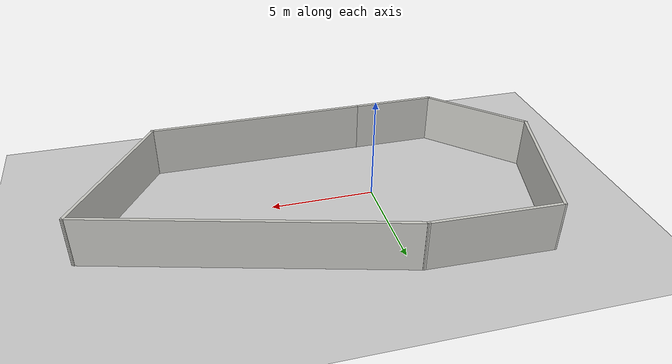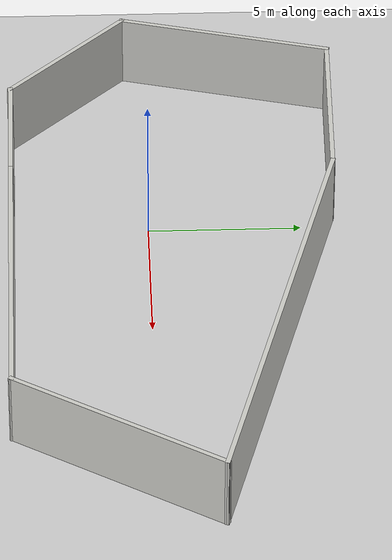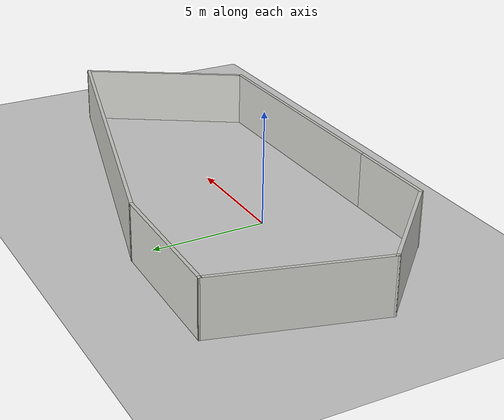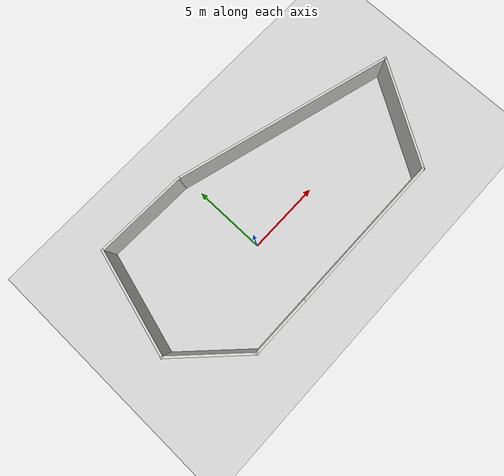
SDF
<sdf version="1.7">
 <world name="default">
  <light name="sun" type="directional">
   <pose>0 0 10 0 -0 0</pose>
   <diffuse>0.8 0.8 0.8 1</diffuse>
   <specular>0.2 0.2 0.2 1</specular>
   <attenuation>
    <range>1000</range>
    <constant>0.9</constant>
    <linear>0.01</linear>
    <quadratic>0.001</quadratic>
   </attenuation>
   <direction>-0.5 0.1 -0.9</direction>
   <spot><inner_angle>0</inner_angle><outer_angle>0</outer_angle><falloff>0</falloff></spot>
  </light>
  <model name="ground_plane">
   <static>1</static>
   <link name="link">
    <collision name="collision">
     <geometry><plane><normal>0 0 1</normal><size>100 100</size></plane></geometry>
     <surface>
      <contact><collide_bitmask>65535</collide_bitmask></contact>
      <friction><ode><mu>100</mu><mu2>50</mu2></ode></friction>
     </surface>
    </collision>
    <visual name="visual">
     <cast_shadows>0</cast_shadows>
     <geometry><plane><normal>0 0 1</normal><size>100 100</size></plane></geometry>
     <material>
      <script><uri>file://media/materials/scripts/gazebo.material</uri><name>Gazebo/Grey</name></script>
     </material>
    </visual>
   </link>
  </model>
  <gravity>0 0 -9.8</gravity>
  <magnetic_field>6e-06 2.3e-05 -4.2e-05</magnetic_field>
  <atmosphere type="adiabatic"/>
  <physics type="ode">
   <max_step_size>0.001</max_step_size>
   <real_time_factor>1</real_time_factor>
   <real_time_update_rate>1000</real_time_update_rate>
  </physics>
  <scene><ambient>0.4 0.4 0.4 1</ambient><background>0.7 0.7 0.7 1</background><shadows>1</shadows></scene>
  <spherical_coordinates>
   <surface_model>EARTH_WGS84</surface_model>
   <latitude_deg>0</latitude_deg>
   <longitude_deg>0</longitude_deg>
   <elevation>0</elevation>
   <heading_deg>0</heading_deg>
  </spherical_coordinates>
  <model name="build1">
   <pose>2.8806 0.863442 0 0 -0 0</pose>
   <link name="Wall_0">
    <collision name="Wall_0_Collision">
     <geometry><box><size>4.25 0.15 2.5</size></box></geometry>
     <pose>0 0 1.25 0 -0 0</pose>
    </collision>
    <visual name="Wall_0_Visual">
     <pose>0 0 1.25 0 -0 0</pose>
     <geometry><box><size>4.25 0.15 2.5</size></box></geometry>
     <material>
      <script><uri>file://media/materials/scripts/gazebo.material</uri><name>Gazebo/CeilingTiled</name></script>
      <ambient>1 1 1 1</ambient>
     </material>
     <meta><layer>0</layer></meta>
    </visual>
    <pose>-5.4106 -5.31344 0 0 -0 3.14159</pose>
   </link>
   <link name="Wall_1">
    <collision name="Wall_1_Collision">
     <geometry><box><size>5.5 0.15 2.5</size></box></geometry>
     <pose>0 0 1.25 0 -0 0</pose>
    </collision>
    <visual name="Wall_1_Visual">
     <pose>0 0 1.25 0 -0 0</pose>
     <geometry><box><size>5.5 0.15 2.5</size></box></geometry>
     <material>
      <script><uri>file://media/materials/scripts/gazebo.material</uri><name>Gazebo/CeilingTiled</name></script>
      <ambient>1 1 1 1</ambient>
     </material>
     <meta><layer>0</layer></meta>
    </visual>
    <pose>-9.35211 -3.42193 0 0 -0 2.35619</pose>
   </link>
   <link name="Wall_10">
    <collision name="Wall_10_Collision">
     <geometry><box><size>10.75 0.15 2.5</size></box></geometry>
     <pose>0 0 1.25 0 -0 0</pose>
    </collision>
    <visual name="Wall_10_Visual">
     <pose>0 0 1.25 0 -0 0</pose>
     <geometry><box><size>10.75 0.15 2.5</size></box></geometry>
     <material>
      <script><uri>file://media/materials/scripts/gazebo.material</uri><name>Gazebo/CeilingTiled</name></script>
      <ambient>1 1 1 1</ambient>
     </material>
     <meta><layer>0</layer></meta>
    </visual>
    <pose>1.9394 -5.31344 0 0 -0 0</pose>
   </link>
   <link name="Wall_11">
    <collision name="Wall_11_Collision">
     <geometry><box><size>7.7321 0.15 2.5</size></box></geometry>
     <pose>0 0 1.25 0 -0 0</pose>
    </collision>
    <visual name="Wall_11_Visual">
     <pose>0 0 1.25 0 -0 0</pose>
     <geometry><box><size>7.7321 0.15 2.5</size></box></geometry>
     <material>
      <script><uri>file://media/materials/scripts/gazebo.material</uri><name>Gazebo/CeilingTiled</name></script>
      <ambient>1 1 1 1</ambient>
     </material>
     <meta><layer>0</layer></meta>
    </visual>
    <pose>9.24289 -2.09504 0 0 -0 1.01399</pose>
   </link>
   <link name="Wall_2">
    <collision name="Wall_2_Collision">
     <geometry><box><size>7.25 0.15 2.5</size></box></geometry>
     <pose>0 0 1.25 0 -0 0</pose>
    </collision>
    <visual name="Wall_2_Visual">
     <pose>0 0 1.25 0 -0 0</pose>
     <geometry><box><size>7.25 0.15 2.5</size></box></geometry>
     <material>
      <script><uri>file://media/materials/scripts/gazebo.material</uri><name>Gazebo/CeilingTiled</name></script>
      <ambient>1 1 1 1</ambient>
     </material>
     <meta><layer>0</layer></meta>
    </visual>
    <pose>-10.3248 1.89862 0 0 -0 1.309</pose>
   </link>
   <link name="Wall_6">
    <collision name="Wall_6_Collision">
     <geometry><box><size>6.27178 0.15 2.5</size></box></geometry>
     <pose>0 0 1.25 0 -0 0</pose>
    </collision>
    <visual name="Wall_6_Visual">
     <pose>0 0 1.25 0 -0 0</pose>
     <geometry><box><size>6.27178 0.15 2.5</size></box></geometry>
     <material>
      <script><uri>file://media/materials/scripts/gazebo.material</uri><name>Gazebo/CeilingTiled</name></script>
      <ambient>1 1 1 1</ambient>
     </material>
     <meta><layer>0</layer></meta>
    </visual>
    <pose>-6.34633 5.24126 0 0 -0 3.11336</pose>
   </link>
   <link name="Wall_8">
    <collision name="Wall_8_Collision">
     <geometry><box><size>15.2319 0.15 2.5</size></box></geometry>
     <pose>0 0 1.25 0 -0 0</pose>
    </collision>
    <visual name="Wall_8_Visual">
     <pose>0 0 1.25 0 -0 0</pose>
     <geometry><box><size>15.2319 0.15 2.5</size></box></geometry>
     <material>
      <script><uri>file://media/materials/scripts/gazebo.material</uri><name>Gazebo/CeilingTiled</name></script>
      <ambient>1 1 1 1</ambient>
     </material>
     <meta><layer>0</layer></meta>
    </visual>
    <pose>3.97986 3.13911 0 0 -0 2.87099</pose>
   </link>
   <static>1</static>
  </model>
 </world>
</sdf>
